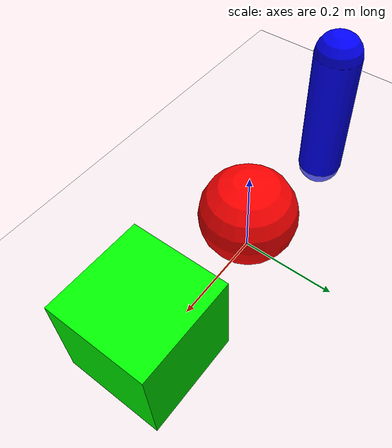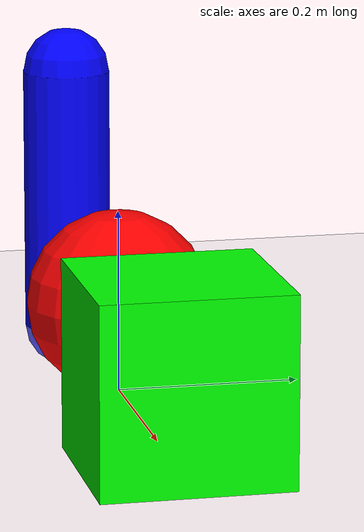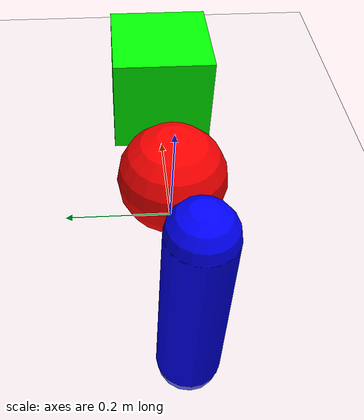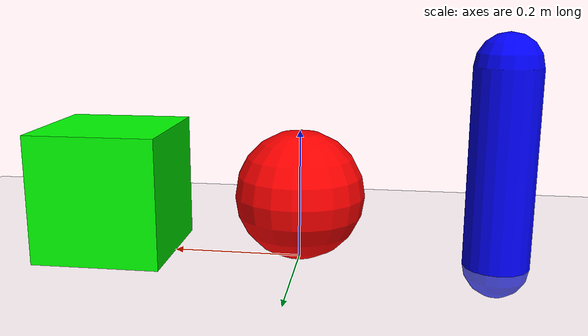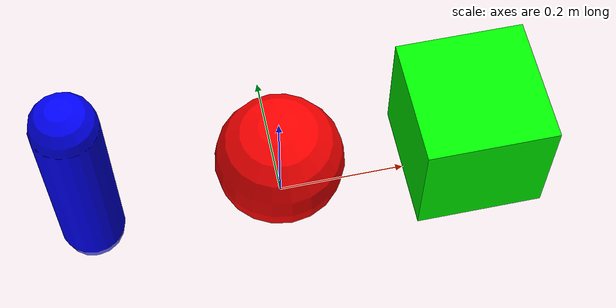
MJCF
<mujoco model="simple_shapes">
  <worldbody>
    <geom type="plane" size="0 0 1" rgba="0.9 0.9 0.9 1"/>
    <body>
      <geom type="sphere" size="0.1" pos="0 0 0.1" rgba="1 0 0 1"/>
    </body>
    <body>
      <geom type="box" size="0.1 0.1 0.1" pos="0.3 0 0.1" rgba="0 1 0 1"/>
    </body>
    <body>
      <geom type="capsule" size="0.05 0.15" pos="-0.3 0 0.15" rgba="0 0 1 1"/>
    </body>
  </worldbody>
</mujoco>
